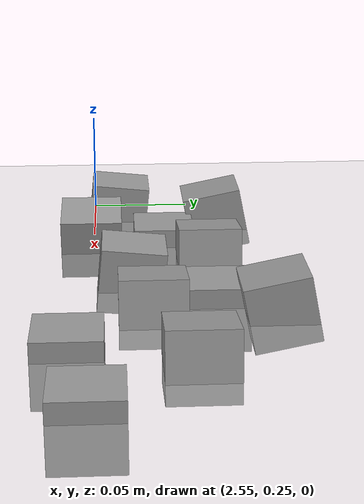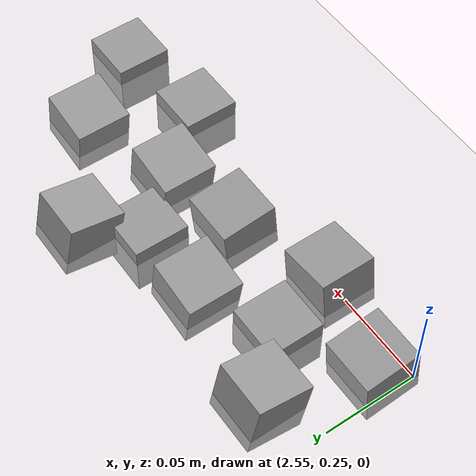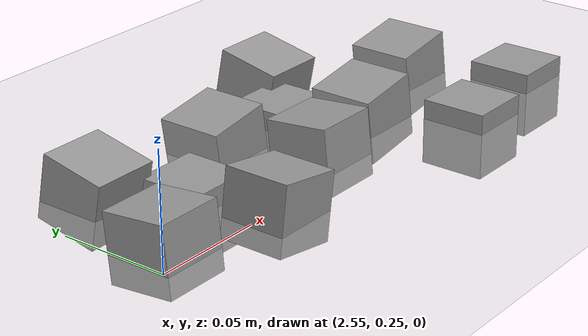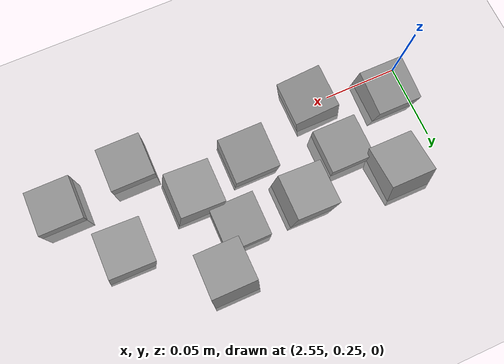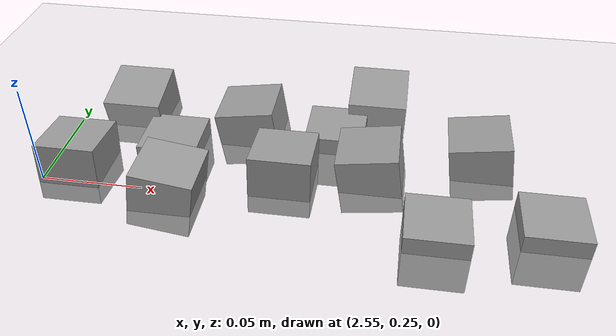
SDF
<sdf version="1.7">
 <world name="default">
  <model name="ground_plane">
   <static>1</static>
   <link name="link">
    <collision name="collision">
     <geometry><plane><normal>0 0 1</normal><size>100 100</size></plane></geometry>
     <surface><friction><ode><mu>100</mu><mu2>50</mu2></ode></friction></surface>
    </collision>
    <visual name="visual">
     <cast_shadows>0</cast_shadows>
     <geometry><plane><normal>0 0 1</normal><size>100 100</size></plane></geometry>
     <material>
      <script><uri>file://media/materials/scripts/gazebo.material</uri><name>Gazebo/Grey</name></script>
     </material>
    </visual>
   </link>
  </model>
  <model name="stone_road_7">
   <link name="link_0_clone_11">
    <inertial>
     <mass>1</mass>
     <inertia>
      <ixx>0.166667</ixx>
      <ixy>0</ixy>
      <ixz>0</ixz>
      <iyy>0.166667</iyy>
      <iyz>0</iyz>
      <izz>0.166667</izz>
     </inertia>
    </inertial>
    <pose>0.007758 0.071496 0.003778 0.2 -0 0</pose>
    <kinematic>1</kinematic>
    <visual name="visual">
     <geometry><box><size>0.03 0.03 0.03</size></box></geometry>
     <material>
      <lighting>1</lighting>
      <script><uri>file://media/materials/scripts/gazebo.material</uri><name>Gazebo/Grey</name></script>
      <shader type="pixel"><normal_map>__default__</normal_map></shader>
      <ambient>0.3 0.3 0.3 1</ambient>
      <diffuse>0.7 0.7 0.7 1</diffuse>
      <specular>0.01 0.01 0.01 1</specular>
      <emissive>0 0 0 1</emissive>
     </material>
    </visual>
    <collision name="collision">
     <geometry><box><size>0.03 0.03 0.03</size></box></geometry>
     <surface>
      <friction>
       <ode><mu>1</mu><mu2>1</mu2><fdir1>0 0 0</fdir1><slip1>0</slip1><slip2>0</slip2></ode>
       <torsional>
        <coefficient>1</coefficient>
        <patch_radius>0</patch_radius>
        <surface_radius>0</surface_radius>
        <use_patch_radius>1</use_patch_radius>
        <ode><slip>0</slip></ode>
       </torsional>
      </friction>
      <bounce><restitution_coefficient>0</restitution_coefficient><threshold>1e+06</threshold></bounce>
      <contact>
       <collide_without_contact>0</collide_without_contact>
       <collide_without_contact_bitmask>1</collide_without_contact_bitmask>
       <collide_bitmask>1</collide_bitmask>
       <ode>
        <soft_cfm>0</soft_cfm>
        <soft_erp>0.2</soft_erp>
        <kp>1e+13</kp>
        <kd>1</kd>
        <max_vel>0.01</max_vel>
        <min_depth>0</min_depth>
       </ode>
       <bullet>
        <split_impulse>1</split_impulse>
        <split_impulse_penetration_threshold>-0.01</split_impulse_penetration_threshold>
        <soft_cfm>0</soft_cfm>
        <soft_erp>0.2</soft_erp>
        <kp>1e+13</kp>
        <kd>1</kd>
       </bullet>
      </contact>
     </surface>
    </collision>
   </link>
   <link name="link_0_clone_2_clone_1">
    <inertial>
     <mass>1</mass>
     <inertia>
      <ixx>0.166667</ixx>
      <ixy>0</ixy>
      <ixz>0</ixz>
      <iyy>0.166667</iyy>
      <iyz>0</iyz>
      <izz>0.166667</izz>
     </inertia>
    </inertial>
    <pose>0.041447 0.006316 0.003778 0 0.15 0</pose>
    <kinematic>1</kinematic>
    <visual name="visual">
     <geometry><box><size>0.03 0.03 0.03</size></box></geometry>
     <material>
      <lighting>1</lighting>
      <script><uri>file://media/materials/scripts/gazebo.material</uri><name>Gazebo/Grey</name></script>
      <shader type="pixel"><normal_map>__default__</normal_map></shader>
      <ambient>0.3 0.3 0.3 1</ambient>
      <diffuse>0.7 0.7 0.7 1</diffuse>
      <specular>0.01 0.01 0.01 1</specular>
      <emissive>0 0 0 1</emissive>
     </material>
    </visual>
    <collision name="collision">
     <geometry><box><size>0.03 0.03 0.03</size></box></geometry>
     <surface>
      <friction>
       <ode><mu>1</mu><mu2>1</mu2><fdir1>0 0 0</fdir1><slip1>0</slip1><slip2>0</slip2></ode>
       <torsional>
        <coefficient>1</coefficient>
        <patch_radius>0</patch_radius>
        <surface_radius>0</surface_radius>
        <use_patch_radius>1</use_patch_radius>
        <ode><slip>0</slip></ode>
       </torsional>
      </friction>
      <bounce><restitution_coefficient>0</restitution_coefficient><threshold>1e+06</threshold></bounce>
      <contact>
       <collide_without_contact>0</collide_without_contact>
       <collide_without_contact_bitmask>1</collide_without_contact_bitmask>
       <collide_bitmask>1</collide_bitmask>
       <ode>
        <soft_cfm>0</soft_cfm>
        <soft_erp>0.2</soft_erp>
        <kp>1e+13</kp>
        <kd>1</kd>
        <max_vel>0.01</max_vel>
        <min_depth>0</min_depth>
       </ode>
       <bullet>
        <split_impulse>1</split_impulse>
        <split_impulse_penetration_threshold>-0.01</split_impulse_penetration_threshold>
        <soft_cfm>0</soft_cfm>
        <soft_erp>0.2</soft_erp>
        <kp>1e+13</kp>
        <kd>1</kd>
       </bullet>
      </contact>
     </surface>
    </collision>
   </link>
   <link name="link_0_clone_2_clone_2_clone">
    <inertial>
     <mass>1</mass>
     <inertia>
      <ixx>0.166667</ixx>
      <ixy>0</ixy>
      <ixz>0</ixz>
      <iyy>0.166667</iyy>
      <iyz>0</iyz>
      <izz>0.166667</izz>
     </inertia>
    </inertial>
    <pose>0.189059 0.051135 0.003778 0 -0.15 0</pose>
    <kinematic>1</kinematic>
    <visual name="visual">
     <geometry><box><size>0.03 0.03 0.03</size></box></geometry>
     <material>
      <lighting>1</lighting>
      <script><uri>file://media/materials/scripts/gazebo.material</uri><name>Gazebo/Grey</name></script>
      <shader type="pixel"><normal_map>__default__</normal_map></shader>
      <ambient>0.3 0.3 0.3 1</ambient>
      <diffuse>0.7 0.7 0.7 1</diffuse>
      <specular>0.01 0.01 0.01 1</specular>
      <emissive>0 0 0 1</emissive>
     </material>
    </visual>
    <collision name="collision">
     <geometry><box><size>0.03 0.03 0.03</size></box></geometry>
     <surface>
      <friction>
       <ode><mu>1</mu><mu2>1</mu2><fdir1>0 0 0</fdir1><slip1>0</slip1><slip2>0</slip2></ode>
       <torsional>
        <coefficient>1</coefficient>
        <patch_radius>0</patch_radius>
        <surface_radius>0</surface_radius>
        <use_patch_radius>1</use_patch_radius>
        <ode><slip>0</slip></ode>
       </torsional>
      </friction>
      <bounce><restitution_coefficient>0</restitution_coefficient><threshold>1e+06</threshold></bounce>
      <contact>
       <collide_without_contact>0</collide_without_contact>
       <collide_without_contact_bitmask>1</collide_without_contact_bitmask>
       <collide_bitmask>1</collide_bitmask>
       <ode>
        <soft_cfm>0</soft_cfm>
        <soft_erp>0.2</soft_erp>
        <kp>1e+13</kp>
        <kd>1</kd>
        <max_vel>0.01</max_vel>
        <min_depth>0</min_depth>
       </ode>
       <bullet>
        <split_impulse>1</split_impulse>
        <split_impulse_penetration_threshold>-0.01</split_impulse_penetration_threshold>
        <soft_cfm>0</soft_cfm>
        <soft_erp>0.2</soft_erp>
        <kp>1e+13</kp>
        <kd>1</kd>
       </bullet>
      </contact>
     </surface>
    </collision>
   </link>
   <link name="link_0_clone_2_clone_2_clone_13_clone_clone_0">
    <inertial>
     <mass>1</mass>
     <inertia>
      <ixx>0.166667</ixx>
      <ixy>0</ixy>
      <ixz>0</ixz>
      <iyy>0.166667</iyy>
      <iyz>0</iyz>
      <izz>0.166667</izz>
     </inertia>
    </inertial>
    <pose>0.094072 0.02539 0.003778 -0.1 0 0</pose>
    <kinematic>1</kinematic>
    <visual name="visual">
     <geometry><box><size>0.03 0.03 0.03</size></box></geometry>
     <material>
      <lighting>1</lighting>
      <script><uri>file://media/materials/scripts/gazebo.material</uri><name>Gazebo/Grey</name></script>
      <shader type="pixel"><normal_map>__default__</normal_map></shader>
      <ambient>0.3 0.3 0.3 1</ambient>
      <diffuse>0.7 0.7 0.7 1</diffuse>
      <specular>0.01 0.01 0.01 1</specular>
      <emissive>0 0 0 1</emissive>
     </material>
    </visual>
    <collision name="collision">
     <geometry><box><size>0.03 0.03 0.03</size></box></geometry>
     <surface>
      <friction>
       <ode><mu>1</mu><mu2>1</mu2><fdir1>0 0 0</fdir1><slip1>0</slip1><slip2>0</slip2></ode>
       <torsional>
        <coefficient>1</coefficient>
        <patch_radius>0</patch_radius>
        <surface_radius>0</surface_radius>
        <use_patch_radius>1</use_patch_radius>
        <ode><slip>0</slip></ode>
       </torsional>
      </friction>
      <bounce><restitution_coefficient>0</restitution_coefficient><threshold>1e+06</threshold></bounce>
      <contact>
       <collide_without_contact>0</collide_without_contact>
       <collide_without_contact_bitmask>1</collide_without_contact_bitmask>
       <collide_bitmask>1</collide_bitmask>
       <ode>
        <soft_cfm>0</soft_cfm>
        <soft_erp>0.2</soft_erp>
        <kp>1e+13</kp>
        <kd>1</kd>
        <max_vel>0.01</max_vel>
        <min_depth>0</min_depth>
       </ode>
       <bullet>
        <split_impulse>1</split_impulse>
        <split_impulse_penetration_threshold>-0.01</split_impulse_penetration_threshold>
        <soft_cfm>0</soft_cfm>
        <soft_erp>0.2</soft_erp>
        <kp>1e+13</kp>
        <kd>1</kd>
       </bullet>
      </contact>
     </surface>
    </collision>
   </link>
   <link name="link_0_clone_2_clone_2_clone_13_clone_clone_16_clone_1">
    <inertial>
     <mass>1</mass>
     <inertia>
      <ixx>0.166667</ixx>
      <ixy>0</ixy>
      <ixz>0</ixz>
      <iyy>0.166667</iyy>
      <iyz>0</iyz>
      <izz>0.166667</izz>
     </inertia>
    </inertial>
    <pose>0.033787 0.042837 -0.006222 0 -0 0</pose>
    <kinematic>1</kinematic>
    <visual name="visual">
     <geometry><box><size>0.03 0.03 0.03</size></box></geometry>
     <material>
      <lighting>1</lighting>
      <script><uri>file://media/materials/scripts/gazebo.material</uri><name>Gazebo/Grey</name></script>
      <shader type="pixel"><normal_map>__default__</normal_map></shader>
      <ambient>0.3 0.3 0.3 1</ambient>
      <diffuse>0.7 0.7 0.7 1</diffuse>
      <specular>0.01 0.01 0.01 1</specular>
      <emissive>0 0 0 1</emissive>
     </material>
    </visual>
    <collision name="collision">
     <geometry><box><size>0.03 0.03 0.03</size></box></geometry>
     <surface>
      <friction>
       <ode><mu>1</mu><mu2>1</mu2><fdir1>0 0 0</fdir1><slip1>0</slip1><slip2>0</slip2></ode>
       <torsional>
        <coefficient>1</coefficient>
        <patch_radius>0</patch_radius>
        <surface_radius>0</surface_radius>
        <use_patch_radius>1</use_patch_radius>
        <ode><slip>0</slip></ode>
       </torsional>
      </friction>
      <bounce><restitution_coefficient>0</restitution_coefficient><threshold>1e+06</threshold></bounce>
      <contact>
       <collide_without_contact>0</collide_without_contact>
       <collide_without_contact_bitmask>1</collide_without_contact_bitmask>
       <collide_bitmask>1</collide_bitmask>
       <ode>
        <soft_cfm>0</soft_cfm>
        <soft_erp>0.2</soft_erp>
        <kp>1e+13</kp>
        <kd>1</kd>
        <max_vel>0.01</max_vel>
        <min_depth>0</min_depth>
       </ode>
       <bullet>
        <split_impulse>1</split_impulse>
        <split_impulse_penetration_threshold>-0.01</split_impulse_penetration_threshold>
        <soft_cfm>0</soft_cfm>
        <soft_erp>0.2</soft_erp>
        <kp>1e+13</kp>
        <kd>1</kd>
       </bullet>
      </contact>
     </surface>
    </collision>
   </link>
   <link name="link_0_clone_2_clone_2_clone_13_clone_clone_16_clone_13">
    <inertial>
     <mass>1</mass>
     <inertia>
      <ixx>0.166667</ixx>
      <ixy>0</ixy>
      <ixz>0</ixz>
      <iyy>0.166667</iyy>
      <iyz>0</iyz>
      <izz>0.166667</izz>
     </inertia>
    </inertial>
    <pose>0.168013 -0.00203 -0.006222 0 -0 0</pose>
    <kinematic>1</kinematic>
    <visual name="visual">
     <geometry><box><size>0.03 0.03 0.03</size></box></geometry>
     <material>
      <lighting>1</lighting>
      <script><uri>file://media/materials/scripts/gazebo.material</uri><name>Gazebo/Grey</name></script>
      <shader type="pixel"><normal_map>__default__</normal_map></shader>
      <ambient>0.3 0.3 0.3 1</ambient>
      <diffuse>0.7 0.7 0.7 1</diffuse>
      <specular>0.01 0.01 0.01 1</specular>
      <emissive>0 0 0 1</emissive>
     </material>
    </visual>
    <collision name="collision">
     <geometry><box><size>0.03 0.03 0.03</size></box></geometry>
     <surface>
      <friction>
       <ode><mu>1</mu><mu2>1</mu2><fdir1>0 0 0</fdir1><slip1>0</slip1><slip2>0</slip2></ode>
       <torsional>
        <coefficient>1</coefficient>
        <patch_radius>0</patch_radius>
        <surface_radius>0</surface_radius>
        <use_patch_radius>1</use_patch_radius>
        <ode><slip>0</slip></ode>
       </torsional>
      </friction>
      <bounce><restitution_coefficient>0</restitution_coefficient><threshold>1e+06</threshold></bounce>
      <contact>
       <collide_without_contact>0</collide_without_contact>
       <collide_without_contact_bitmask>1</collide_without_contact_bitmask>
       <collide_bitmask>1</collide_bitmask>
       <ode>
        <soft_cfm>0</soft_cfm>
        <soft_erp>0.2</soft_erp>
        <kp>1e+13</kp>
        <kd>1</kd>
        <max_vel>0.01</max_vel>
        <min_depth>0</min_depth>
       </ode>
       <bullet>
        <split_impulse>1</split_impulse>
        <split_impulse_penetration_threshold>-0.01</split_impulse_penetration_threshold>
        <soft_cfm>0</soft_cfm>
        <soft_erp>0.2</soft_erp>
        <kp>1e+13</kp>
        <kd>1</kd>
       </bullet>
      </contact>
     </surface>
    </collision>
   </link>
   <link name="link_0_clone_2_clone_2_clone_13_clone_clone_16_clone_19">
    <inertial>
     <mass>1</mass>
     <inertia>
      <ixx>0.166667</ixx>
      <ixy>0</ixy>
      <ixz>0</ixz>
      <iyy>0.166667</iyy>
      <iyz>0</iyz>
      <izz>0.166667</izz>
     </inertia>
    </inertial>
    <pose>0.219442 0.006622 -0.006222 0 -0 0</pose>
    <kinematic>1</kinematic>
    <visual name="visual">
     <geometry><box><size>0.03 0.03 0.03</size></box></geometry>
     <material>
      <lighting>1</lighting>
      <script><uri>file://media/materials/scripts/gazebo.material</uri><name>Gazebo/Grey</name></script>
      <shader type="pixel"><normal_map>__default__</normal_map></shader>
      <ambient>0.3 0.3 0.3 1</ambient>
      <diffuse>0.7 0.7 0.7 1</diffuse>
      <specular>0.01 0.01 0.01 1</specular>
      <emissive>0 0 0 1</emissive>
     </material>
    </visual>
    <collision name="collision">
     <geometry><box><size>0.03 0.03 0.03</size></box></geometry>
     <surface>
      <friction>
       <ode><mu>1</mu><mu2>1</mu2><fdir1>0 0 0</fdir1><slip1>0</slip1><slip2>0</slip2></ode>
       <torsional>
        <coefficient>1</coefficient>
        <patch_radius>0</patch_radius>
        <surface_radius>0</surface_radius>
        <use_patch_radius>1</use_patch_radius>
        <ode><slip>0</slip></ode>
       </torsional>
      </friction>
      <bounce><restitution_coefficient>0</restitution_coefficient><threshold>1e+06</threshold></bounce>
      <contact>
       <collide_without_contact>0</collide_without_contact>
       <collide_without_contact_bitmask>1</collide_without_contact_bitmask>
       <collide_bitmask>1</collide_bitmask>
       <ode>
        <soft_cfm>0</soft_cfm>
        <soft_erp>0.2</soft_erp>
        <kp>1e+13</kp>
        <kd>1</kd>
        <max_vel>0.01</max_vel>
        <min_depth>0</min_depth>
       </ode>
       <bullet>
        <split_impulse>1</split_impulse>
        <split_impulse_penetration_threshold>-0.01</split_impulse_penetration_threshold>
        <soft_cfm>0</soft_cfm>
        <soft_erp>0.2</soft_erp>
        <kp>1e+13</kp>
        <kd>1</kd>
       </bullet>
      </contact>
     </surface>
    </collision>
   </link>
   <link name="link_0_clone_2_clone_2_clone_13_clone_clone_16_clone_20">
    <inertial>
     <mass>1</mass>
     <inertia>
      <ixx>0.166667</ixx>
      <ixy>0</ixy>
      <ixz>0</ixz>
      <iyy>0.166667</iyy>
      <iyz>0</iyz>
      <izz>0.166667</izz>
     </inertia>
    </inertial>
    <pose>0.115763 0.063063 -0.006222 0 -0 0</pose>
    <kinematic>1</kinematic>
    <visual name="visual">
     <geometry><box><size>0.03 0.03 0.03</size></box></geometry>
     <material>
      <lighting>1</lighting>
      <script><uri>file://media/materials/scripts/gazebo.material</uri><name>Gazebo/Grey</name></script>
      <shader type="pixel"><normal_map>__default__</normal_map></shader>
      <ambient>0.3 0.3 0.3 1</ambient>
      <diffuse>0.7 0.7 0.7 1</diffuse>
      <specular>0.01 0.01 0.01 1</specular>
      <emissive>0 0 0 1</emissive>
     </material>
    </visual>
    <collision name="collision">
     <geometry><box><size>0.03 0.03 0.03</size></box></geometry>
     <surface>
      <friction>
       <ode><mu>1</mu><mu2>1</mu2><fdir1>0 0 0</fdir1><slip1>0</slip1><slip2>0</slip2></ode>
       <torsional>
        <coefficient>1</coefficient>
        <patch_radius>0</patch_radius>
        <surface_radius>0</surface_radius>
        <use_patch_radius>1</use_patch_radius>
        <ode><slip>0</slip></ode>
       </torsional>
      </friction>
      <bounce><restitution_coefficient>0</restitution_coefficient><threshold>1e+06</threshold></bounce>
      <contact>
       <collide_without_contact>0</collide_without_contact>
       <collide_without_contact_bitmask>1</collide_without_contact_bitmask>
       <collide_bitmask>1</collide_bitmask>
       <ode>
        <soft_cfm>0</soft_cfm>
        <soft_erp>0.2</soft_erp>
        <kp>1e+13</kp>
        <kd>1</kd>
        <max_vel>0.01</max_vel>
        <min_depth>0</min_depth>
       </ode>
       <bullet>
        <split_impulse>1</split_impulse>
        <split_impulse_penetration_threshold>-0.01</split_impulse_penetration_threshold>
        <soft_cfm>0</soft_cfm>
        <soft_erp>0.2</soft_erp>
        <kp>1e+13</kp>
        <kd>1</kd>
       </bullet>
      </contact>
     </surface>
    </collision>
   </link>
   <link name="link_0_clone_2_clone_2_clone_13_clone_clone_3">
    <inertial>
     <mass>1</mass>
     <inertia>
      <ixx>0.166667</ixx>
      <ixy>0</ixy>
      <ixz>0</ixz>
      <iyy>0.166667</iyy>
      <iyz>0</iyz>
      <izz>0.166667</izz>
     </inertia>
    </inertial>
    <pose>-0.008408 0.020239 0.003778 -0.1 0 0</pose>
    <kinematic>1</kinematic>
    <visual name="visual">
     <geometry><box><size>0.03 0.03 0.03</size></box></geometry>
     <material>
      <lighting>1</lighting>
      <script><uri>file://media/materials/scripts/gazebo.material</uri><name>Gazebo/Grey</name></script>
      <shader type="pixel"><normal_map>__default__</normal_map></shader>
      <ambient>0.3 0.3 0.3 1</ambient>
      <diffuse>0.7 0.7 0.7 1</diffuse>
      <specular>0.01 0.01 0.01 1</specular>
      <emissive>0 0 0 1</emissive>
     </material>
    </visual>
    <collision name="collision">
     <geometry><box><size>0.03 0.03 0.03</size></box></geometry>
     <surface>
      <friction>
       <ode><mu>1</mu><mu2>1</mu2><fdir1>0 0 0</fdir1><slip1>0</slip1><slip2>0</slip2></ode>
       <torsional>
        <coefficient>1</coefficient>
        <patch_radius>0</patch_radius>
        <surface_radius>0</surface_radius>
        <use_patch_radius>1</use_patch_radius>
        <ode><slip>0</slip></ode>
       </torsional>
      </friction>
      <bounce><restitution_coefficient>0</restitution_coefficient><threshold>1e+06</threshold></bounce>
      <contact>
       <collide_without_contact>0</collide_without_contact>
       <collide_without_contact_bitmask>1</collide_without_contact_bitmask>
       <collide_bitmask>1</collide_bitmask>
       <ode>
        <soft_cfm>0</soft_cfm>
        <soft_erp>0.2</soft_erp>
        <kp>1e+13</kp>
        <kd>1</kd>
        <max_vel>0.01</max_vel>
        <min_depth>0</min_depth>
       </ode>
       <bullet>
        <split_impulse>1</split_impulse>
        <split_impulse_penetration_threshold>-0.01</split_impulse_penetration_threshold>
        <soft_cfm>0</soft_cfm>
        <soft_erp>0.2</soft_erp>
        <kp>1e+13</kp>
        <kd>1</kd>
       </bullet>
      </contact>
     </surface>
    </collision>
   </link>
   <link name="link_0_clone_2_clone_2_clone_6">
    <inertial>
     <mass>1</mass>
     <inertia>
      <ixx>0.166667</ixx>
      <ixy>0</ixy>
      <ixz>0</ixz>
      <iyy>0.166667</iyy>
      <iyz>0</iyz>
      <izz>0.166667</izz>
     </inertia>
    </inertial>
    <pose>0.136141 0.034017 0.003778 0 -0.15 0</pose>
    <kinematic>1</kinematic>
    <visual name="visual">
     <geometry><box><size>0.03 0.03 0.03</size></box></geometry>
     <material>
      <lighting>1</lighting>
      <script><uri>file://media/materials/scripts/gazebo.material</uri><name>Gazebo/Grey</name></script>
      <shader type="pixel"><normal_map>__default__</normal_map></shader>
      <ambient>0.3 0.3 0.3 1</ambient>
      <diffuse>0.7 0.7 0.7 1</diffuse>
      <specular>0.01 0.01 0.01 1</specular>
      <emissive>0 0 0 1</emissive>
     </material>
    </visual>
    <collision name="collision">
     <geometry><box><size>0.03 0.03 0.03</size></box></geometry>
     <surface>
      <friction>
       <ode><mu>1</mu><mu2>1</mu2><fdir1>0 0 0</fdir1><slip1>0</slip1><slip2>0</slip2></ode>
       <torsional>
        <coefficient>1</coefficient>
        <patch_radius>0</patch_radius>
        <surface_radius>0</surface_radius>
        <use_patch_radius>1</use_patch_radius>
        <ode><slip>0</slip></ode>
       </torsional>
      </friction>
      <bounce><restitution_coefficient>0</restitution_coefficient><threshold>1e+06</threshold></bounce>
      <contact>
       <collide_without_contact>0</collide_without_contact>
       <collide_without_contact_bitmask>1</collide_without_contact_bitmask>
       <collide_bitmask>1</collide_bitmask>
       <ode>
        <soft_cfm>0</soft_cfm>
        <soft_erp>0.2</soft_erp>
        <kp>1e+13</kp>
        <kd>1</kd>
        <max_vel>0.01</max_vel>
        <min_depth>0</min_depth>
       </ode>
       <bullet>
        <split_impulse>1</split_impulse>
        <split_impulse_penetration_threshold>-0.01</split_impulse_penetration_threshold>
        <soft_cfm>0</soft_cfm>
        <soft_erp>0.2</soft_erp>
        <kp>1e+13</kp>
        <kd>1</kd>
       </bullet>
      </contact>
     </surface>
    </collision>
   </link>
   <link name="link_0_clone_2_clone_2_clone_9">
    <inertial>
     <mass>1</mass>
     <inertia>
      <ixx>0.166667</ixx>
      <ixy>0</ixy>
      <ixz>0</ixz>
      <iyy>0.166667</iyy>
      <iyz>0</iyz>
      <izz>0.166667</izz>
     </inertia>
    </inertial>
    <pose>0.071478 0.063212 0.003778 0 -0.15 0</pose>
    <kinematic>1</kinematic>
    <visual name="visual">
     <geometry><box><size>0.03 0.03 0.03</size></box></geometry>
     <material>
      <lighting>1</lighting>
      <script><uri>file://media/materials/scripts/gazebo.material</uri><name>Gazebo/Grey</name></script>
      <shader type="pixel"><normal_map>__default__</normal_map></shader>
      <ambient>0.3 0.3 0.3 1</ambient>
      <diffuse>0.7 0.7 0.7 1</diffuse>
      <specular>0.01 0.01 0.01 1</specular>
      <emissive>0 0 0 1</emissive>
     </material>
    </visual>
    <collision name="collision">
     <geometry><box><size>0.03 0.03 0.03</size></box></geometry>
     <surface>
      <friction>
       <ode><mu>1</mu><mu2>1</mu2><fdir1>0 0 0</fdir1><slip1>0</slip1><slip2>0</slip2></ode>
       <torsional>
        <coefficient>1</coefficient>
        <patch_radius>0</patch_radius>
        <surface_radius>0</surface_radius>
        <use_patch_radius>1</use_patch_radius>
        <ode><slip>0</slip></ode>
       </torsional>
      </friction>
      <bounce><restitution_coefficient>0</restitution_coefficient><threshold>1e+06</threshold></bounce>
      <contact>
       <collide_without_contact>0</collide_without_contact>
       <collide_without_contact_bitmask>1</collide_without_contact_bitmask>
       <collide_bitmask>1</collide_bitmask>
       <ode>
        <soft_cfm>0</soft_cfm>
        <soft_erp>0.2</soft_erp>
        <kp>1e+13</kp>
        <kd>1</kd>
        <max_vel>0.01</max_vel>
        <min_depth>0</min_depth>
       </ode>
       <bullet>
        <split_impulse>1</split_impulse>
        <split_impulse_penetration_threshold>-0.01</split_impulse_penetration_threshold>
        <soft_cfm>0</soft_cfm>
        <soft_erp>0.2</soft_erp>
        <kp>1e+13</kp>
        <kd>1</kd>
       </bullet>
      </contact>
     </surface>
    </collision>
   </link>
   <link name="link_0_clone_8">
    <inertial>
     <mass>1</mass>
     <inertia>
      <ixx>0.166667</ixx>
      <ixy>0</ixy>
      <ixz>0</ixz>
      <iyy>0.166667</iyy>
      <iyz>0</iyz>
      <izz>0.166667</izz>
     </inertia>
    </inertial>
    <pose>0.135749 0.089175 0.003778 0.2 -0 0</pose>
    <kinematic>1</kinematic>
    <visual name="visual">
     <geometry><box><size>0.03 0.03 0.03</size></box></geometry>
     <material>
      <lighting>1</lighting>
      <script><uri>file://media/materials/scripts/gazebo.material</uri><name>Gazebo/Grey</name></script>
      <shader type="pixel"><normal_map>__default__</normal_map></shader>
      <ambient>0.3 0.3 0.3 1</ambient>
      <diffuse>0.7 0.7 0.7 1</diffuse>
      <specular>0.01 0.01 0.01 1</specular>
      <emissive>0 0 0 1</emissive>
     </material>
    </visual>
    <collision name="collision">
     <geometry><box><size>0.03 0.03 0.03</size></box></geometry>
     <surface>
      <friction>
       <ode><mu>1</mu><mu2>1</mu2><fdir1>0 0 0</fdir1><slip1>0</slip1><slip2>0</slip2></ode>
       <torsional>
        <coefficient>1</coefficient>
        <patch_radius>0</patch_radius>
        <surface_radius>0</surface_radius>
        <use_patch_radius>1</use_patch_radius>
        <ode><slip>0</slip></ode>
       </torsional>
      </friction>
      <bounce><restitution_coefficient>0</restitution_coefficient><threshold>1e+06</threshold></bounce>
      <contact>
       <collide_without_contact>0</collide_without_contact>
       <collide_without_contact_bitmask>1</collide_without_contact_bitmask>
       <collide_bitmask>1</collide_bitmask>
       <ode>
        <soft_cfm>0</soft_cfm>
        <soft_erp>0.2</soft_erp>
        <kp>1e+13</kp>
        <kd>1</kd>
        <max_vel>0.01</max_vel>
        <min_depth>0</min_depth>
       </ode>
       <bullet>
        <split_impulse>1</split_impulse>
        <split_impulse_penetration_threshold>-0.01</split_impulse_penetration_threshold>
        <soft_cfm>0</soft_cfm>
        <soft_erp>0.2</soft_erp>
        <kp>1e+13</kp>
        <kd>1</kd>
       </bullet>
      </contact>
     </surface>
    </collision>
   </link>
   <static>0</static>
   <pose>2.57282 0.242462 -0 0 -0 0</pose>
  </model>
 </world>
</sdf>
